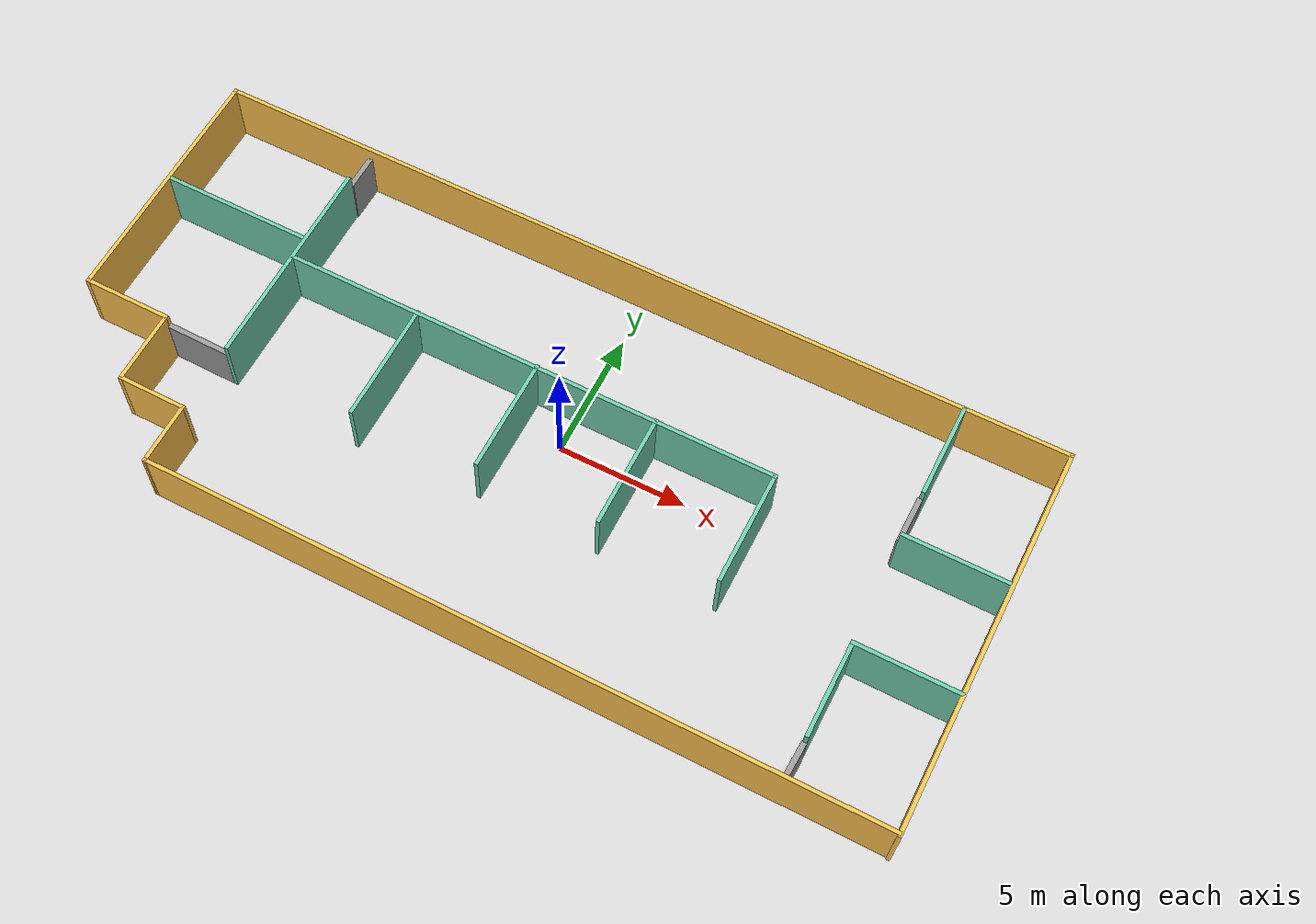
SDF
<?xml version='1.0'?>
<sdf version='1.6'>
  <model name='Building'>
    <pose frame=''>-0.676227 -0.751824 0 0 -0 0</pose>
    <link name='Door_0'>
      <collision name='Door_0_Collision'>
        <geometry>
          <box>
            <size>2.58109 0.2 2</size>
          </box>
        </geometry>
        <pose frame=''>0 0 1 0 -0 0</pose>
      </collision>
      <visual name='Door_0_Visual'>
        <pose frame=''>0 0 1 0 -0 0</pose>
        <geometry>
          <box>
            <size>2.58109 0.2 2</size>
          </box>
        </geometry>
        <material>
          <script>
            <uri>file://media/materials/scripts/gazebo.material</uri>
            <name>Gazebo/Grey</name>
          </script>
        </material>
      </visual>
      <pose frame=''>-12.3535 -2.32405 0 0 -0 3.13435</pose>
    </link>
    <link name='Door_1'>
      <collision name='Door_1_Collision'>
        <geometry>
          <box>
            <size>1.8268 0.2 2</size>
          </box>
        </geometry>
        <pose frame=''>0 0 1 0 -0 0</pose>
      </collision>
      <visual name='Door_1_Visual'>
        <pose frame=''>0 0 1 0 -0 0</pose>
        <geometry>
          <box>
            <size>1.8268 0.2 2</size>
          </box>
        </geometry>
        <material>
          <script>
            <uri>file://media/materials/scripts/gazebo.material</uri>
            <name>Gazebo/Grey</name>
          </script>
        </material>
      </visual>
      <pose frame=''>13.0292 2.92693 0 0 -0 1.5655</pose>
    </link>
    <link name='Door_2'>
      <collision name='Door_2_Collision'>
        <geometry>
          <box>
            <size>1.47434 0.2 2</size>
          </box>
        </geometry>
        <pose frame=''>0 0 1 0 -0 0</pose>
      </collision>
      <visual name='Door_2_Visual'>
        <pose frame=''>0 0 1 0 -0 0</pose>
        <geometry>
          <box>
            <size>1.47434 0.2 2</size>
          </box>
        </geometry>
        <material>
          <script>
            <uri>file://media/materials/scripts/gazebo.material</uri>
            <name>Gazebo/Grey</name>
          </script>
        </material>
      </visual>
      <pose frame=''>13.1149 -6.73153 0 0 -0 1.52915</pose>
    </link>
    <link name='Door_3'>
      <collision name='Door_3_Collision'>
        <geometry>
          <box>
            <size>1.38773 0.2 2</size>
          </box>
        </geometry>
        <pose frame=''>0 0 1 0 -0 0</pose>
      </collision>
      <visual name='Door_3_Visual'>
        <pose frame=''>0 0 1 0 -0 0</pose>
        <geometry>
          <box>
            <size>1.38773 0.2 2</size>
          </box>
        </geometry>
        <material>
          <script>
            <uri>file://media/materials/scripts/gazebo.material</uri>
            <name>Gazebo/Grey</name>
          </script>
        </material>
      </visual>
      <pose frame=''>-11.0417 6.77121 0 0 0 -1.58178</pose>
    </link>
    <link name='Wall_0'>
      <collision name='Wall_0_Collision'>
        <geometry>
          <box>
            <size>28.25 0.15 2.5</size>
          </box>
        </geometry>
        <pose frame=''>0 0 1.25 0 -0 0</pose>
      </collision>
      <visual name='Wall_0_Visual'>
        <pose frame=''>0 0 1.25 0 -0 0</pose>
        <geometry>
          <box>
            <size>28.25 0.15 2.5</size>
          </box>
        </geometry>
        <material>
          <script>
            <uri>file://media/materials/scripts/gazebo.material</uri>
            <name>Gazebo/Grey</name>
          </script>
          <ambient>1 0.764706 0.305882 1</ambient>
        </material>
        <meta>
          <layer>0</layer>
        </meta>
      </visual>
      <pose frame=''>2.95 -7.5 0 0 -0 0</pose>
    </link>
    <link name='Wall_10'>
      <collision name='Wall_10_Collision'>
        <geometry>
          <box>
            <size>8.5 0.15 2.5</size>
          </box>
        </geometry>
        <pose frame=''>0 0 1.25 0 -0 0</pose>
      </collision>
      <visual name='Wall_10_Visual'>
        <pose frame=''>0 0 1.25 0 -0 0</pose>
        <geometry>
          <box>
            <size>8.5 0.15 2.5</size>
          </box>
        </geometry>
        <material>
          <script>
            <uri>file://media/materials/scripts/gazebo.material</uri>
            <name>Gazebo/Grey</name>
          </script>
          <ambient>0.435294 0.796078 0.67451 1</ambient>
        </material>
        <meta>
          <layer>0</layer>
        </meta>
      </visual>
      <pose frame=''>-11.0694 1.81529 0 0 0 -1.5708</pose>
    </link>
    <link name='Wall_12'>
      <collision name='Wall_12_Collision'>
        <geometry>
          <box>
            <size>6 0.15 2.5</size>
          </box>
        </geometry>
        <pose frame=''>0 0 1.25 0 -0 0</pose>
      </collision>
      <visual name='Wall_12_Visual'>
        <pose frame=''>0 0 1.25 0 -0 0</pose>
        <geometry>
          <box>
            <size>6 0.15 2.5</size>
          </box>
        </geometry>
        <material>
          <script>
            <uri>file://media/materials/scripts/gazebo.material</uri>
            <name>Gazebo/Grey</name>
          </script>
          <ambient>0.435294 0.796078 0.67451 1</ambient>
        </material>
        <meta>
          <layer>0</layer>
        </meta>
      </visual>
      <pose frame=''>-14.0177 2.93127 0 0 -0 0</pose>
    </link>
    <link name='Wall_14'>
      <collision name='Wall_14_Collision'>
        <geometry>
          <box>
            <size>19.5 0.15 2.5</size>
          </box>
        </geometry>
        <pose frame=''>0 0 1.25 0 -0 0</pose>
      </collision>
      <visual name='Wall_14_Visual'>
        <pose frame=''>0 0 1.25 0 -0 0</pose>
        <geometry>
          <box>
            <size>19.5 0.15 2.5</size>
          </box>
        </geometry>
        <material>
          <script>
            <uri>file://media/materials/scripts/gazebo.material</uri>
            <name>Gazebo/Grey</name>
          </script>
          <ambient>0.435294 0.796078 0.67451 1</ambient>
        </material>
        <meta>
          <layer>0</layer>
        </meta>
      </visual>
      <pose frame=''>-1.33323 2.04415 0 0 -0 0</pose>
    </link>
    <link name='Wall_15'>
      <collision name='Wall_15_Collision'>
        <geometry>
          <box>
            <size>4.5 0.15 2.5</size>
          </box>
        </geometry>
        <pose frame=''>0 0 1.25 0 -0 0</pose>
      </collision>
      <visual name='Wall_15_Visual'>
        <pose frame=''>0 0 1.25 0 -0 0</pose>
        <geometry>
          <box>
            <size>4.5 0.15 2.5</size>
          </box>
        </geometry>
        <material>
          <script>
            <uri>file://media/materials/scripts/gazebo.material</uri>
            <name>Gazebo/Grey</name>
          </script>
          <ambient>0.435294 0.796078 0.67451 1</ambient>
        </material>
        <meta>
          <layer>0</layer>
        </meta>
      </visual>
      <pose frame=''>8.34177 -0.130849 0 0 0 -1.5708</pose>
    </link>
    <link name='Wall_17'>
      <collision name='Wall_17_Collision'>
        <geometry>
          <box>
            <size>4.5 0.15 2.5</size>
          </box>
        </geometry>
        <pose frame=''>0 0 1.25 0 -0 0</pose>
      </collision>
      <visual name='Wall_17_Visual'>
        <pose frame=''>0 0 1.25 0 -0 0</pose>
        <geometry>
          <box>
            <size>4.5 0.15 2.5</size>
          </box>
        </geometry>
        <material>
          <script>
            <uri>file://media/materials/scripts/gazebo.material</uri>
            <name>Gazebo/Grey</name>
          </script>
          <ambient>0.435294 0.796078 0.67451 1</ambient>
        </material>
        <meta>
          <layer>0</layer>
        </meta>
      </visual>
      <pose frame=''>-0.944044 -0.100258 0 0 0 -1.5708</pose>
    </link>
    <link name='Wall_19'>
      <collision name='Wall_19_Collision'>
        <geometry>
          <box>
            <size>4.75 0.15 2.5</size>
          </box>
        </geometry>
        <pose frame=''>0 0 1.25 0 -0 0</pose>
      </collision>
      <visual name='Wall_19_Visual'>
        <pose frame=''>0 0 1.25 0 -0 0</pose>
        <geometry>
          <box>
            <size>4.75 0.15 2.5</size>
          </box>
        </geometry>
        <material>
          <script>
            <uri>file://media/materials/scripts/gazebo.material</uri>
            <name>Gazebo/Grey</name>
          </script>
          <ambient>0.435294 0.796078 0.67451 1</ambient>
        </material>
        <meta>
          <layer>0</layer>
        </meta>
      </visual>
      <pose frame=''>-5.80789 -0.225258 0 0 0 -1.5708</pose>
    </link>
    <link name='Wall_2'>
      <collision name='Wall_2_Collision'>
        <geometry>
          <box>
            <size>2.5 0.15 2.5</size>
          </box>
        </geometry>
        <pose frame=''>0 0 1.25 0 -0 0</pose>
      </collision>
      <visual name='Wall_2_Visual'>
        <pose frame=''>0 0 1.25 0 -0 0</pose>
        <geometry>
          <box>
            <size>2.5 0.15 2.5</size>
          </box>
        </geometry>
        <material>
          <script>
            <uri>file://media/materials/scripts/gazebo.material</uri>
            <name>Gazebo/Grey</name>
          </script>
          <ambient>1 0.764706 0.305882 1</ambient>
        </material>
        <meta>
          <layer>0</layer>
        </meta>
      </visual>
      <pose frame=''>-11.1 -6.325 0 0 -0 1.5708</pose>
    </link>
    <link name='Wall_21'>
      <collision name='Wall_21_Collision'>
        <geometry>
          <box>
            <size>4.5 0.15 2.5</size>
          </box>
        </geometry>
        <pose frame=''>0 0 1.25 0 -0 0</pose>
      </collision>
      <visual name='Wall_21_Visual'>
        <pose frame=''>0 0 1.25 0 -0 0</pose>
        <geometry>
          <box>
            <size>4.5 0.15 2.5</size>
          </box>
        </geometry>
        <material>
          <script>
            <uri>file://media/materials/scripts/gazebo.material</uri>
            <name>Gazebo/Grey</name>
          </script>
          <ambient>0.435294 0.796078 0.67451 1</ambient>
        </material>
        <meta>
          <layer>0</layer>
        </meta>
      </visual>
      <pose frame=''>3.76685 -0.100258 0 0 0 -1.5708</pose>
    </link>
    <link name='Wall_25'>
      <collision name='Wall_25_Collision'>
        <geometry>
          <box>
            <size>4 0.15 2.5</size>
          </box>
        </geometry>
        <pose frame=''>0 0 1.25 0 -0 0</pose>
      </collision>
      <visual name='Wall_25_Visual'>
        <pose frame=''>0 0 1.25 0 -0 0</pose>
        <geometry>
          <box>
            <size>4 0.15 2.5</size>
          </box>
        </geometry>
        <material>
          <script>
            <uri>file://media/materials/scripts/gazebo.material</uri>
            <name>Gazebo/Grey</name>
          </script>
          <ambient>0.435294 0.796078 0.67451 1</ambient>
        </material>
        <meta>
          <layer>0</layer>
        </meta>
      </visual>
      <pose frame=''>14.9913 2.04415 0 0 -0 0</pose>
    </link>
    <link name='Wall_27'>
      <collision name='Wall_27_Collision'>
        <geometry>
          <box>
            <size>4 0.15 2.5</size>
          </box>
        </geometry>
        <pose frame=''>0 0 1.25 0 -0 0</pose>
      </collision>
      <visual name='Wall_27_Visual'>
        <pose frame=''>0 0 1.25 0 -0 0</pose>
        <geometry>
          <box>
            <size>4 0.15 2.5</size>
          </box>
        </geometry>
        <material>
          <script>
            <uri>file://media/materials/scripts/gazebo.material</uri>
            <name>Gazebo/Grey</name>
          </script>
          <ambient>0.435294 0.796078 0.67451 1</ambient>
        </material>
        <meta>
          <layer>0</layer>
        </meta>
      </visual>
      <pose frame=''>15.0831 -2.33025 0 0 -0 0</pose>
    </link>
    <link name='Wall_29'>
      <collision name='Wall_29_Collision'>
        <geometry>
          <box>
            <size>3.75 0.15 2.5</size>
          </box>
        </geometry>
        <pose frame=''>0 0 1.25 0 -0 0</pose>
      </collision>
      <visual name='Wall_29_Visual'>
        <pose frame=''>0 0 1.25 0 -0 0</pose>
        <geometry>
          <box>
            <size>3.75 0.15 2.5</size>
          </box>
        </geometry>
        <material>
          <script>
            <uri>file://media/materials/scripts/gazebo.material</uri>
            <name>Gazebo/Grey</name>
          </script>
          <ambient>0.435294 0.796078 0.67451 1</ambient>
        </material>
        <meta>
          <layer>0</layer>
        </meta>
      </visual>
      <pose frame=''>13.1581 -4.13025 0 0 0 -1.5708</pose>
    </link>
    <link name='Wall_3'>
      <collision name='Wall_3_Collision'>
        <geometry>
          <box>
            <size>2.75 0.15 2.5</size>
          </box>
        </geometry>
        <pose frame=''>0 0 1.25 0 -0 0</pose>
      </collision>
      <visual name='Wall_3_Visual'>
        <pose frame=''>0 0 1.25 0 -0 0</pose>
        <geometry>
          <box>
            <size>2.75 0.15 2.5</size>
          </box>
        </geometry>
        <material>
          <script>
            <uri>file://media/materials/scripts/gazebo.material</uri>
            <name>Gazebo/Grey</name>
          </script>
          <ambient>1 0.764706 0.305882 1</ambient>
        </material>
        <meta>
          <layer>0</layer>
        </meta>
      </visual>
      <pose frame=''>-12.4 -5.15 0 0 -0 3.14159</pose>
    </link>
    <link name='Wall_31'>
      <collision name='Wall_31_Collision'>
        <geometry>
          <box>
            <size>3.75 0.15 2.5</size>
          </box>
        </geometry>
        <pose frame=''>0 0 1.25 0 -0 0</pose>
      </collision>
      <visual name='Wall_31_Visual'>
        <pose frame=''>0 0 1.25 0 -0 0</pose>
        <geometry>
          <box>
            <size>3.75 0.15 2.5</size>
          </box>
        </geometry>
        <material>
          <script>
            <uri>file://media/materials/scripts/gazebo.material</uri>
            <name>Gazebo/Grey</name>
          </script>
          <ambient>0.435294 0.796078 0.67451 1</ambient>
        </material>
        <meta>
          <layer>0</layer>
        </meta>
      </visual>
      <pose frame=''>13.0663 5.71016 0 0 -0 1.5708</pose>
    </link>
    <link name='Wall_4'>
      <collision name='Wall_4_Collision'>
        <geometry>
          <box>
            <size>3 0.15 2.5</size>
          </box>
        </geometry>
        <pose frame=''>0 0 1.25 0 -0 0</pose>
      </collision>
      <visual name='Wall_4_Visual'>
        <pose frame=''>0 0 1.25 0 -0 0</pose>
        <geometry>
          <box>
            <size>3 0.15 2.5</size>
          </box>
        </geometry>
        <material>
          <script>
            <uri>file://media/materials/scripts/gazebo.material</uri>
            <name>Gazebo/Grey</name>
          </script>
          <ambient>1 0.764706 0.305882 1</ambient>
        </material>
        <meta>
          <layer>0</layer>
        </meta>
      </visual>
      <pose frame=''>-13.7 -3.725 0 0 -0 1.5708</pose>
    </link>
    <link name='Wall_5'>
      <collision name='Wall_5_Collision'>
        <geometry>
          <box>
            <size>3.5 0.15 2.5</size>
          </box>
        </geometry>
        <pose frame=''>0 0 1.25 0 -0 0</pose>
      </collision>
      <visual name='Wall_5_Visual'>
        <pose frame=''>0 0 1.25 0 -0 0</pose>
        <geometry>
          <box>
            <size>3.5 0.15 2.5</size>
          </box>
        </geometry>
        <material>
          <script>
            <uri>file://media/materials/scripts/gazebo.material</uri>
            <name>Gazebo/Grey</name>
          </script>
          <ambient>1 0.764706 0.305882 1</ambient>
        </material>
        <meta>
          <layer>0</layer>
        </meta>
      </visual>
      <pose frame=''>-15.375 -2.3 0 0 -0 3.14159</pose>
    </link>
    <link name='Wall_6'>
      <collision name='Wall_6_Collision'>
        <geometry>
          <box>
            <size>10 0.15 2.5</size>
          </box>
        </geometry>
        <pose frame=''>0 0 1.25 0 -0 0</pose>
      </collision>
      <visual name='Wall_6_Visual'>
        <pose frame=''>0 0 1.25 0 -0 0</pose>
        <geometry>
          <box>
            <size>10 0.15 2.5</size>
          </box>
        </geometry>
        <material>
          <script>
            <uri>file://media/materials/scripts/gazebo.material</uri>
            <name>Gazebo/Grey</name>
          </script>
          <ambient>1 0.764706 0.305882 1</ambient>
        </material>
        <meta>
          <layer>0</layer>
        </meta>
      </visual>
      <pose frame=''>-17.05 2.625 0 0 -0 1.5708</pose>
    </link>
    <link name='Wall_7'>
      <collision name='Wall_7_Collision'>
        <geometry>
          <box>
            <size>34.25 0.15 2.5</size>
          </box>
        </geometry>
        <pose frame=''>0 0 1.25 0 -0 0</pose>
      </collision>
      <visual name='Wall_7_Visual'>
        <pose frame=''>0 0 1.25 0 -0 0</pose>
        <geometry>
          <box>
            <size>34.25 0.15 2.5</size>
          </box>
        </geometry>
        <material>
          <script>
            <uri>file://media/materials/scripts/gazebo.material</uri>
            <name>Gazebo/Grey</name>
          </script>
          <ambient>1 0.764706 0.305882 1</ambient>
        </material>
        <meta>
          <layer>0</layer>
        </meta>
      </visual>
      <pose frame=''>0 7.55 0 0 -0 0</pose>
    </link>
    <link name='Wall_8'>
      <collision name='Wall_8_Collision'>
        <geometry>
          <box>
            <size>15.25 0.15 2.5</size>
          </box>
        </geometry>
        <pose frame=''>0 0 1.25 0 -0 0</pose>
      </collision>
      <visual name='Wall_8_Visual'>
        <pose frame=''>0 0 1.25 0 -0 0</pose>
        <geometry>
          <box>
            <size>15.25 0.15 2.5</size>
          </box>
        </geometry>
        <material>
          <script>
            <uri>file://media/materials/scripts/gazebo.material</uri>
            <name>Gazebo/Grey</name>
          </script>
          <ambient>1 0.764706 0.305882 1</ambient>
        </material>
        <meta>
          <layer>0</layer>
        </meta>
      </visual>
      <pose frame=''>17.05 0 0 0 0 -1.5708</pose>
    </link>
    <static>1</static>
  </model>
</sdf>
